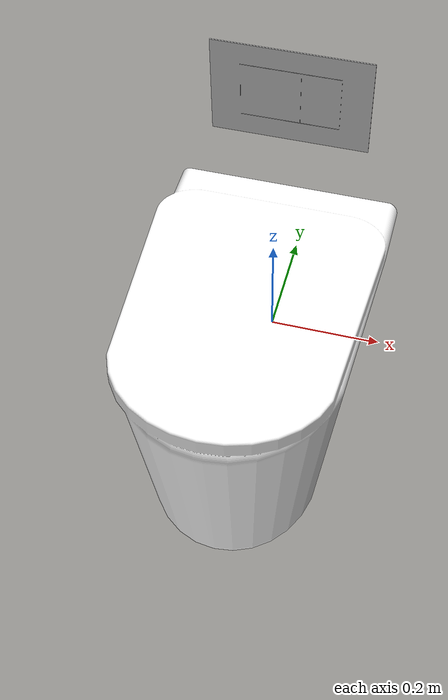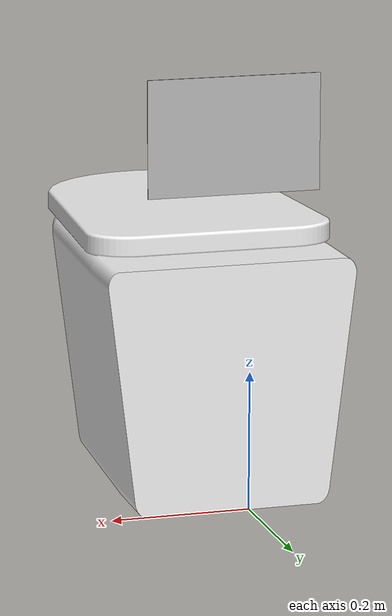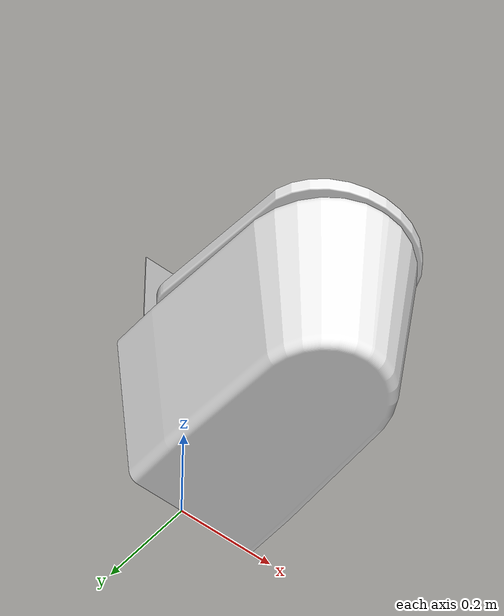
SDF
<?xml version="1.0" ?>
<sdf version="1.5">
	<model name="toilet">
		<static>true</static>
		<link name="toilet_link">
			<collision name="toilet_collision">
				<pose>0.05 -0.25 0</pose>
				<geometry>
					<box>
						<size>0.25 0.45 0.75</size>
					</box>
				</geometry>
			</collision>
			<visual name="toilet_mesh">
				<cast_shadows>true</cast_shadows>
				<geometry>
					<mesh>
						<uri>model://toilet/meshes/model.dae</uri>
					</mesh>
				</geometry>
			</visual>
    	</link>
  	</model>
</sdf>
